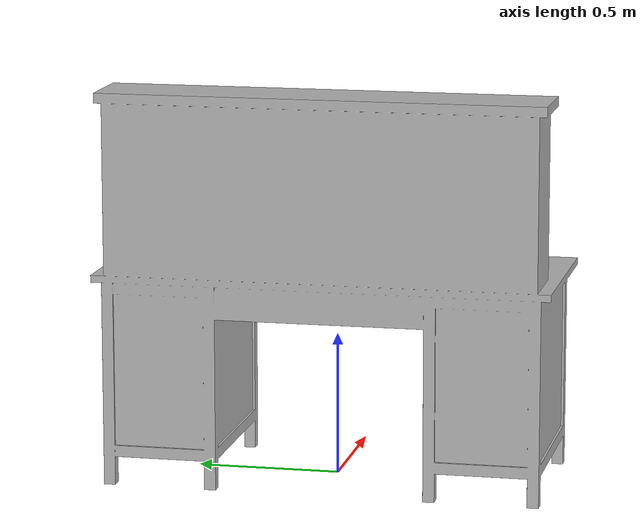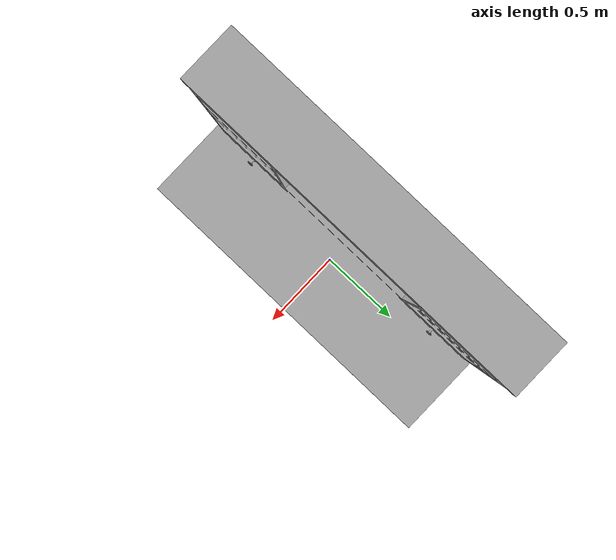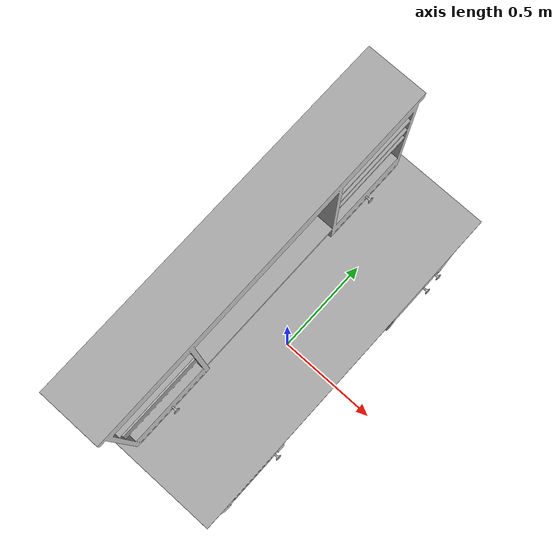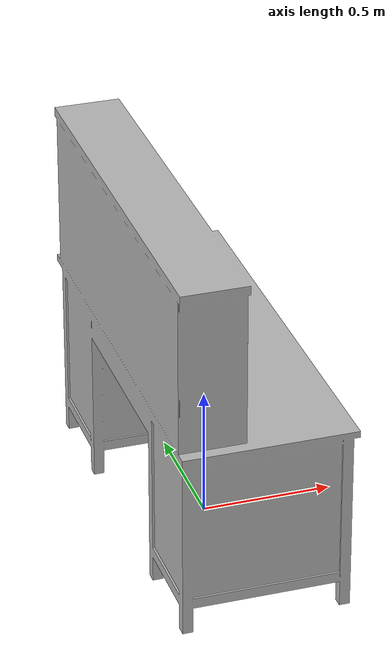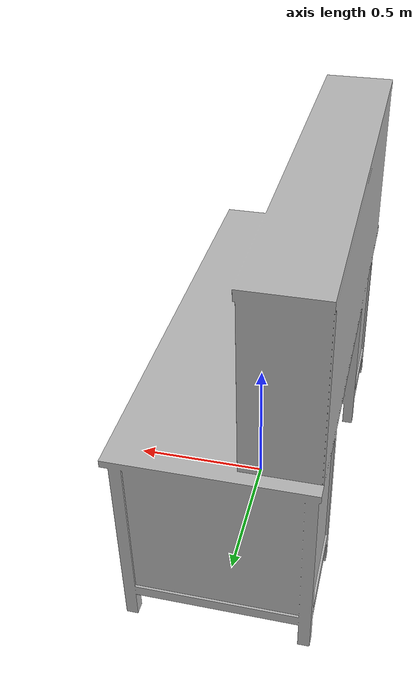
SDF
<?xml version='1.0'?>
<sdf version='1.4'>
  <model name='s__489'>
    <pose>0 0 0 0 0 0</pose>
    <static>true</static>
    <link name='link'>
      <collision name='collision'>
        <pose>0 0 0 0 0 0</pose>
        <geometry>
          <box>
            <size>0.669346 1.58999 2</size>
          </box>
        </geometry>
      </collision>
      <visual name='visual'>
        <pose>0 0 0 0 0 0</pose>
        <geometry>
          <mesh><uri>model://s__489/s__489.dae</uri></mesh>
        </geometry>
      </visual>
    </link>
  </model>
</sdf>
